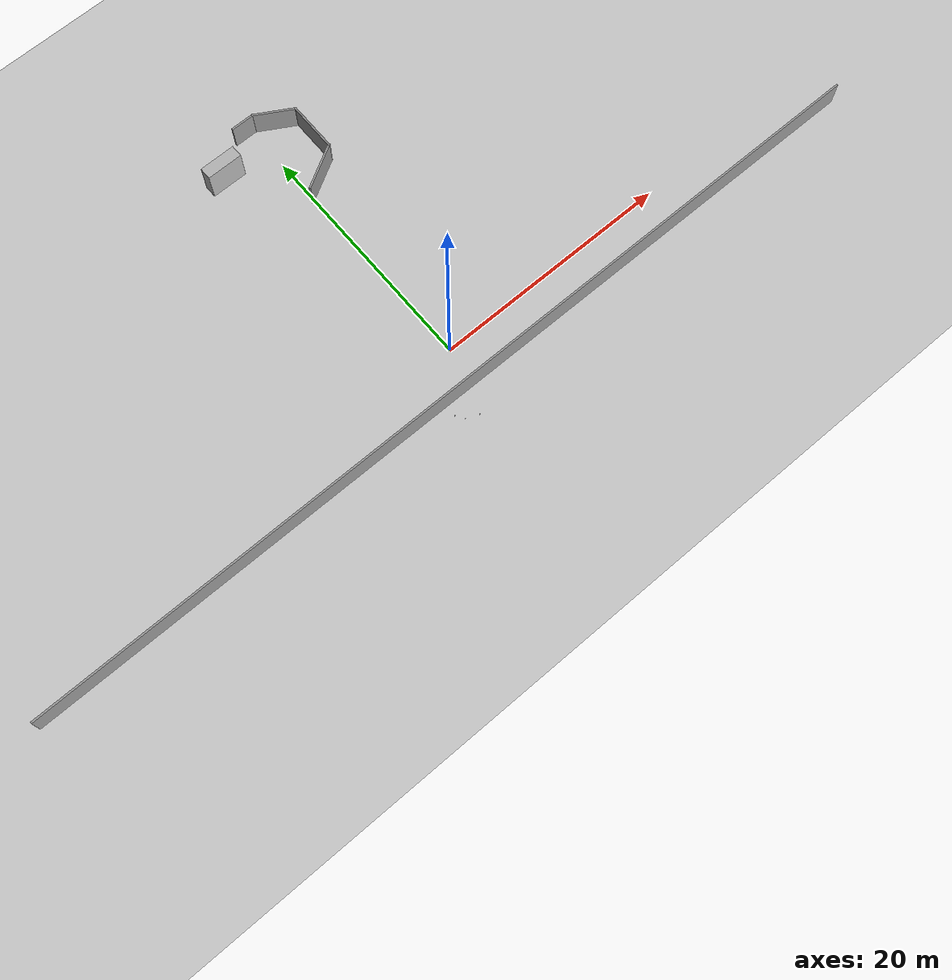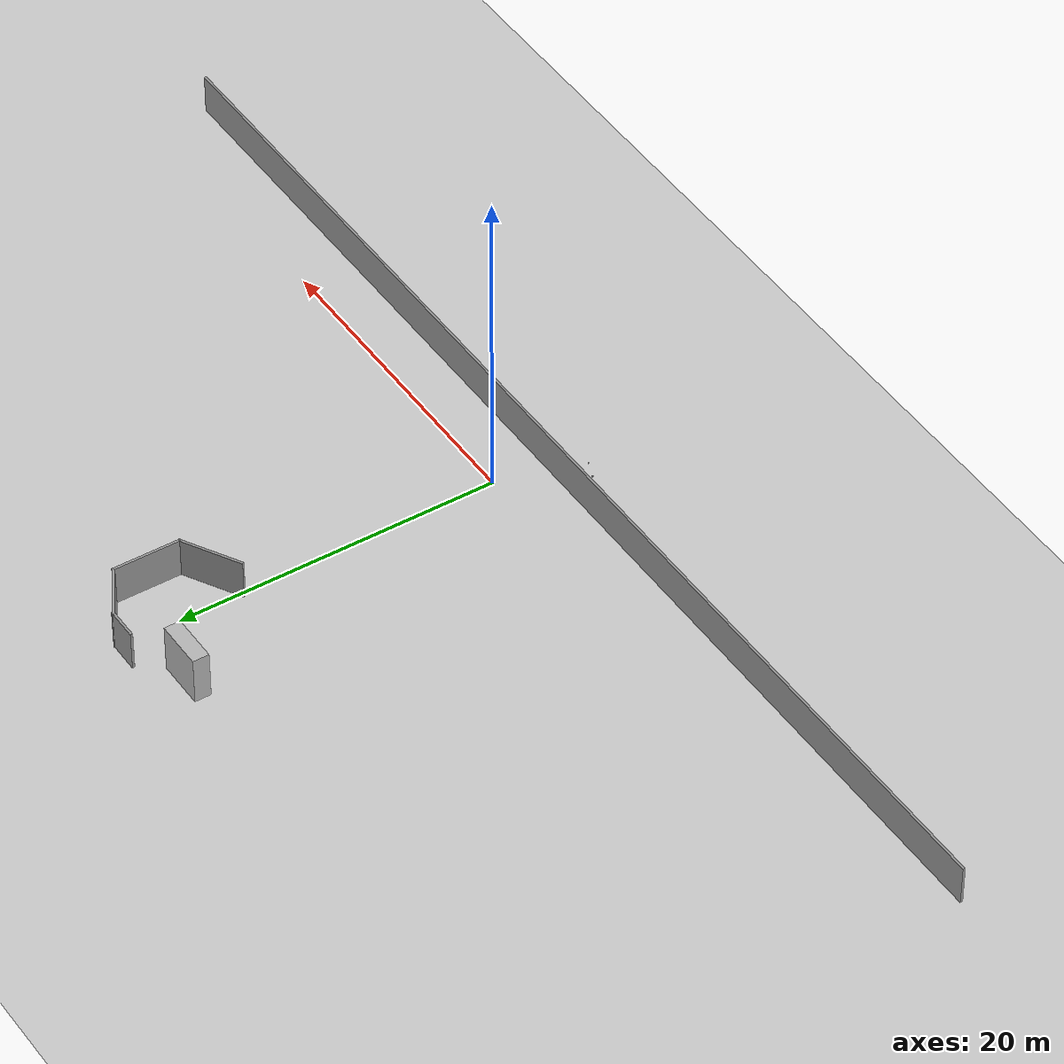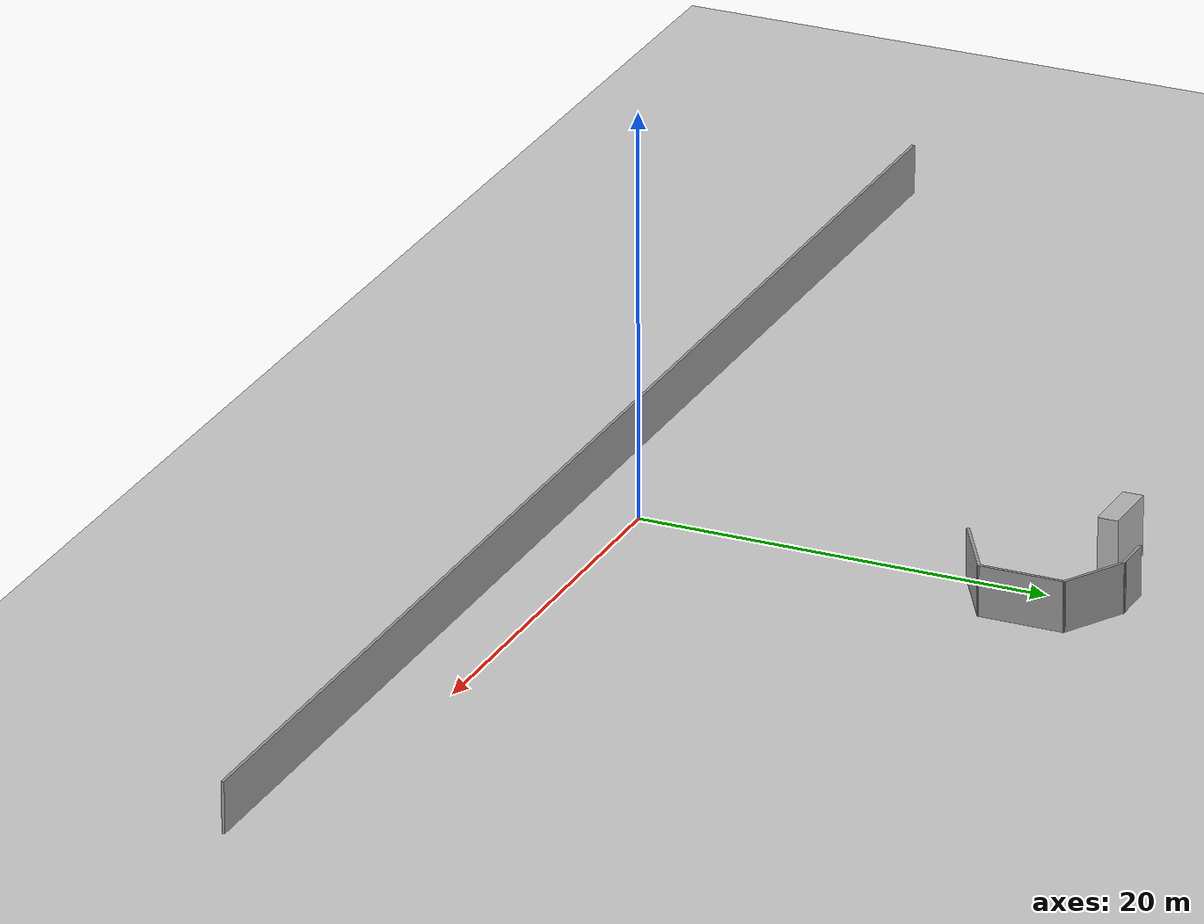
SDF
<sdf version="1.7">
 <world name="default">
  <light name="sun" type="directional">
   <pose>0 0 10 0 -0 0</pose>
   <diffuse>0.8 0.8 0.8 1</diffuse>
   <specular>0.2 0.2 0.2 1</specular>
   <attenuation>
    <range>1000</range>
    <constant>0.9</constant>
    <linear>0.01</linear>
    <quadratic>0.001</quadratic>
   </attenuation>
   <direction>-0.5 0.1 -0.9</direction>
   <spot><inner_angle>0</inner_angle><outer_angle>0</outer_angle><falloff>0</falloff></spot>
  </light>
  <model name="ground_plane">
   <static>1</static>
   <link name="link">
    <collision name="collision">
     <geometry><plane><normal>0 0 1</normal><size>100 100</size></plane></geometry>
     <surface><friction><ode><mu>100</mu><mu2>50</mu2></ode></friction></surface>
    </collision>
    <visual name="visual">
     <cast_shadows>0</cast_shadows>
     <geometry><plane><normal>0 0 1</normal><size>100 100</size></plane></geometry>
     <material>
      <script><uri>file://media/materials/scripts/gazebo.material</uri><name>Gazebo/Grey</name></script>
     </material>
    </visual>
   </link>
  </model>
  <gravity>0 0 -9.8</gravity>
  <magnetic_field>6e-06 2.3e-05 -4.2e-05</magnetic_field>
  <atmosphere type="adiabatic"/>
  <physics type="ode">
   <max_step_size>0.001</max_step_size>
   <real_time_factor>1</real_time_factor>
   <real_time_update_rate>1000</real_time_update_rate>
  </physics>
  <scene><ambient>0.4 0.4 0.4 1</ambient><background>0.7 0.7 0.7 1</background><shadows>1</shadows></scene>
  <audio><device>default</device></audio>
  <spherical_coordinates>
   <surface_model>EARTH_WGS84</surface_model>
   <latitude_deg>0</latitude_deg>
   <longitude_deg>0</longitude_deg>
   <elevation>0</elevation>
   <heading_deg>0</heading_deg>
  </spherical_coordinates>
  <model name="wall">
   <pose>4.74646 22.4218 0 0 -0 0</pose>
   <link name="Wall_10">
    <collision name="Wall_10_Collision">
     <geometry><box><size>3.5 0.15 2.5</size></box></geometry>
     <pose>0 0 1.25 0 -0 0</pose>
    </collision>
    <visual name="Wall_10_Visual">
     <pose>0 0 1.25 0 -0 0</pose>
     <geometry><box><size>3.5 0.15 2.5</size></box></geometry>
     <material>
      <script><uri>file://media/materials/scripts/gazebo.material</uri><name>Gazebo/Grey</name></script>
      <ambient>1 1 1 1</ambient>
     </material>
     <meta><layer>0</layer></meta>
    </visual>
    <pose>-3.0411 0.546247 0 0 -0 2.61799</pose>
   </link>
   <link name="Wall_11">
    <collision name="Wall_11_Collision">
     <geometry><box><size>2 0.15 2.5</size></box></geometry>
     <pose>0 0 1.25 0 -0 0</pose>
    </collision>
    <visual name="Wall_11_Visual">
     <pose>0 0 1.25 0 -0 0</pose>
     <geometry><box><size>2 0.15 2.5</size></box></geometry>
     <material>
      <script><uri>file://media/materials/scripts/gazebo.material</uri><name>Gazebo/Grey</name></script>
      <ambient>1 1 1 1</ambient>
     </material>
     <meta><layer>0</layer></meta>
    </visual>
    <pose>-5.41669 1.38375 0 0 -0 3.14159</pose>
   </link>
   <link name="Wall_8">
    <collision name="Wall_8_Collision">
     <geometry><box><size>4 0.15 2.5</size></box></geometry>
     <pose>0 0 1.25 0 -0 0</pose>
    </collision>
    <visual name="Wall_8_Visual">
     <pose>0 0 1.25 0 -0 0</pose>
     <geometry><box><size>4 0.15 2.5</size></box></geometry>
     <material>
      <script><uri>file://media/materials/scripts/gazebo.material</uri><name>Gazebo/Grey</name></script>
      <ambient>1 1 1 1</ambient>
     </material>
     <meta><layer>0</layer></meta>
    </visual>
    <pose>-3.25761 -5.35375 0 0 -0 0.523599</pose>
   </link>
   <link name="Wall_9">
    <collision name="Wall_9_Collision">
     <geometry><box><size>4.25 0.15 2.5</size></box></geometry>
     <pose>0 0 1.25 0 -0 0</pose>
    </collision>
    <visual name="Wall_9_Visual">
     <pose>0 0 1.25 0 -0 0</pose>
     <geometry><box><size>4.25 0.15 2.5</size></box></geometry>
     <material>
      <script><uri>file://media/materials/scripts/gazebo.material</uri><name>Gazebo/Grey</name></script>
      <ambient>1 1 1 1</ambient>
     </material>
     <meta><layer>0</layer></meta>
    </visual>
    <pose>-1.59051 -2.34125 0 0 -0 1.5708</pose>
   </link>
   <static>1</static>
  </model>
  <model name="brick_box_3x1x3">
   <static>1</static>
   <link name="chassis">
    <pose>0 0 1.5 0 -0 0</pose>
    <collision name="collision"><geometry><box><size>3 1 3</size></box></geometry></collision>
    <visual name="visual">
     <geometry><mesh><uri>model://brick_box_3x1x3/meshes/simple_box.dae</uri><scale>3 1 3</scale></mesh></geometry>
     <material>
      <script>
       <uri>model://brick_box_3x1x3/materials/scripts</uri>
       <uri>model://brick_box_3x1x3/materials/textures</uri>
       <name>BrickBox/Diffuse</name>
      </script>
     </material>
    </visual>
   </link>
   <pose>-4.13738 21.8631 0 0 -0 0</pose>
  </model>
  <model name="coke_can">
   <link name="link">
    <inertial>
     <pose>0 0 0.06 0 -0 0</pose>
     <mass>0.39</mass>
     <inertia>
      <ixx>0.00055575</ixx>
      <ixy>0</ixy>
      <ixz>0</ixz>
      <iyy>0.00055575</iyy>
      <iyz>0</iyz>
      <izz>0.0001755</izz>
     </inertia>
    </inertial>
    <collision name="collision">
     <pose>0.003937 0.004724 -0.18 0 -0 0</pose>
     <geometry><mesh><uri>model://coke_can/meshes/coke_can.dae</uri></mesh></geometry>
     <surface>
      <friction><ode><mu>1</mu><mu2>1</mu2></ode></friction>
      <contact><ode><kp>1e+07</kp><kd>1</kd><min_depth>0.001</min_depth><max_vel>0.1</max_vel></ode></contact>
     </surface>
    </collision>
    <visual name="visual">
     <pose>0.003937 0.004724 -0.18 0 -0 0</pose>
     <geometry><mesh><uri>model://coke_can/meshes/coke_can.dae</uri></mesh></geometry>
    </visual>
   </link>
   <pose>-1.58216 -5.2633 -0.003233 -0.049792 -0.003462 -0.000788</pose>
  </model>
  <model name="coke_can_0">
   <link name="link">
    <inertial>
     <pose>0 0 0.06 0 -0 0</pose>
     <mass>0.39</mass>
     <inertia>
      <ixx>0.00055575</ixx>
      <ixy>0</ixy>
      <ixz>0</ixz>
      <iyy>0.00055575</iyy>
      <iyz>0</iyz>
      <izz>0.0001755</izz>
     </inertia>
    </inertial>
    <collision name="collision">
     <pose>0.003937 0.004724 -0.18 0 -0 0</pose>
     <geometry><mesh><uri>model://coke_can/meshes/coke_can.dae</uri></mesh></geometry>
     <surface>
      <friction><ode><mu>1</mu><mu2>1</mu2></ode></friction>
      <contact><ode><kp>1e+07</kp><kd>1</kd><min_depth>0.001</min_depth><max_vel>0.1</max_vel></ode></contact>
     </surface>
    </collision>
    <visual name="visual">
     <pose>0.003937 0.004724 -0.18 0 -0 0</pose>
     <geometry><mesh><uri>model://coke_can/meshes/coke_can.dae</uri></mesh></geometry>
    </visual>
   </link>
   <pose>-3.03321 -4.1633 -0.0027 -0.045651 0.000313 -0.103879</pose>
  </model>
  <model name="coke_can_1">
   <link name="link">
    <inertial>
     <pose>0 0 0.06 0 -0 0</pose>
     <mass>0.39</mass>
     <inertia>
      <ixx>0.00055575</ixx>
      <ixy>0</ixy>
      <ixz>0</ixz>
      <iyy>0.00055575</iyy>
      <iyz>0</iyz>
      <izz>0.0001755</izz>
     </inertia>
    </inertial>
    <collision name="collision">
     <pose>0.003937 0.004724 -0.18 0 -0 0</pose>
     <geometry><mesh><uri>model://coke_can/meshes/coke_can.dae</uri></mesh></geometry>
     <surface>
      <friction><ode><mu>1</mu><mu2>1</mu2></ode></friction>
      <contact><ode><kp>1e+07</kp><kd>1</kd><min_depth>0.001</min_depth><max_vel>0.1</max_vel></ode></contact>
     </surface>
    </collision>
    <visual name="visual">
     <pose>0.003937 0.004724 -0.18 0 -0 0</pose>
     <geometry><mesh><uri>model://coke_can/meshes/coke_can.dae</uri></mesh></geometry>
    </visual>
   </link>
   <pose>-2.58622 -4.86075 -0.003156 -0.054236 -0.008157 -0.000736</pose>
  </model>
  <model name="paresita">
   <pose>-1.41505 -1.63753 0 0 -0 0</pose>
   <link name="Wall_0">
    <collision name="Wall_0_Collision">
     <geometry><box><size>75.5 0.15 2.5</size></box></geometry>
     <pose>0 0 1.25 0 -0 0</pose>
    </collision>
    <visual name="Wall_0_Visual">
     <pose>0 0 1.25 0 -0 0</pose>
     <geometry><box><size>75.5 0.15 2.5</size></box></geometry>
     <material>
      <script><uri>file://media/materials/scripts/gazebo.material</uri><name>Gazebo/Grey</name></script>
      <ambient>1 1 1 1</ambient>
     </material>
     <meta><layer>0</layer></meta>
    </visual>
    <pose>0 -1.5475 0 0 -0 0</pose>
   </link>
   <static>1</static>
  </model>
 </world>
</sdf>
